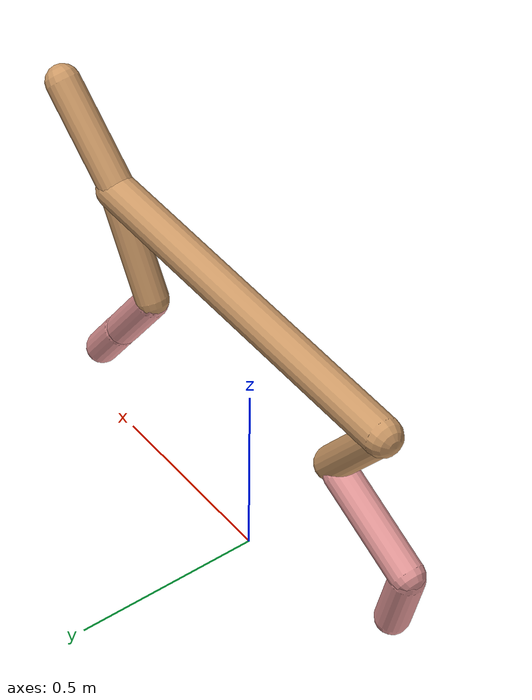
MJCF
<mujoco model="cheetah">
  <compiler angle="radian" coordinate="local" inertiafromgeom="true" settotalmass="14" />
  <default>
    <joint armature=".1" damping=".01" limited="true" solimplimit="0 .8 .03" solreflimit=".02 1" stiffness="8" />
    <geom conaffinity="0" condim="3" contype="1" friction="0.8 .1 .1" rgba="0.8 0.6 .4 1" solimp="0.0 0.8 0.01" solref="0.02 1" />
    <motor ctrllimited="true" ctrlrange="-1 1" />
  </default>
  <size nstack="300000" nuser_geom="1" />
  <option gravity="0 0 -9.81" timestep="0.01" />
  <worldbody>
    <body name="torso" pos="0.0 0.0 0.7759126565163899">
      <joint armature="0" axis="1 0 0" damping="0" limited="false" name="ignorex" pos="0 0 0" stiffness="0" type="slide" />
      <joint armature="0" axis="0 0 1" damping="0" limited="false" name="ignorez" pos="0 0 0" stiffness="0" type="slide" />
      <joint armature="0" axis="0 1 0" damping="0" limited="false" name="ignorey" pos="0 0 0" stiffness="0" type="hinge" />
      <geom fromto="-0.5 0.0 0.0 0.546596224199872 0.0 0.0" name="torso" size="0.05007357637964304" type="capsule" />
      <geom axisangle="0 1 0 .87" name="head" pos="0.6465962241998721 0.0 0.1" size="0.0450952713714762 0.15" type="capsule" />

      <body name="bthigh" pos="-.5 0 0">
        <joint axis="0 1 0" damping="6" name="bthigh" pos="0 0 0" range="-.52 1.05" stiffness="240" type="hinge" />
        <geom axisangle="0 1 0 -3.8" name="bthigh" pos="0.09546912497886463 0.0 -0.12410986247252402" size="0.04439362121419463 0.13756881244014596" type="capsule" />
        <body name="bshin" pos="0.15093824995772925 0.0 -0.23821972494504803">
          <joint axis="0 1 0" damping="4.5" name="bshin" pos="0 0 0" range="-.785 .785" stiffness="180" type="hinge" />
          <geom axisangle="0 1 0 -2.03" name="bshin" pos="-0.1331241487431513 0.0 -0.06656207437157564" rgba="0.9 0.6 0.6 1" size="0.04439362121419463 0.14231256459325445" type="capsule" />
          <body name="bfoot" pos="-0.2662482974863026 0.0 -0.1331241487431513">
            <joint axis="0 1 0" damping="3" name="bfoot" pos="0 0 0" range="-.4 .785" stiffness="120" type="hinge" />
            <geom axisangle="0 1 0 -.27" name="bfoot" pos="0.028576586569976227 0.0 -0.09239762990958982" rgba="0.9 0.6 0.6 1" size="0.04439362121419463 0.08918254047843945" type="capsule" />
            <inertial mass="10" />
          </body>
        </body>
      </body>
      <body name="fthigh" pos="0.5465962241998721 0.0 0.0">
        <joint axis="0 1 0" damping="4.5" name="fthigh" pos="0 0 0" range="-1.5 0.8" stiffness="180" type="hinge" />
        <geom axisangle="0 1 0 .52" name="fthigh" pos="-0.07532141738060645 0.0 -0.12912242979532532" size="0.0427764266874634 0.1435610704149371" type="capsule" />
        <body name="fshin" pos="-0.1506428347612129 0.0 -0.25824485959065063">
          <joint axis="0 1 0" damping="3" name="fshin" pos="0 0 0" range="-1.2 1.1" stiffness="120" type="hinge" />
          <geom axisangle="0 1 0 -.6" name="fshin" pos="0.06992812886046364 0.0 -0.09682356303756504" rgba="0.9 0.6 0.6 1" size="0.0427764266874634 0.1144170937141604" type="capsule" />
          <body name="ffoot" pos="0.13985625772092727 0.0 -0.19364712607513007">
            <joint axis="0 1 0" damping="1.5" name="ffoot" pos="0 0 0" range="-3.1 -0.3" stiffness="60" type="hinge" />
            <geom axisangle="0 1 0 -.6" name="ffoot" pos="0.04800577842067033 0.0 -0.07467565532104276" rgba="0.9 0.6 0.6 1" size="0.0427764266874634 0.0755584581131248" type="capsule" />
            <inertial mass="10" />
          </body>
        </body>
      </body>
    </body>
  </worldbody>
  <actuator>
    <motor gear="120" joint="bthigh" name="bthigh" />
    <motor gear="90" joint="bshin" name="bshin" />
    <motor gear="60" joint="bfoot" name="bfoot" />
    <motor gear="120" joint="fthigh" name="fthigh" />
    <motor gear="60" joint="fshin" name="fshin" />
    <motor gear="30" joint="ffoot" name="ffoot" />
  </actuator>
</mujoco>
